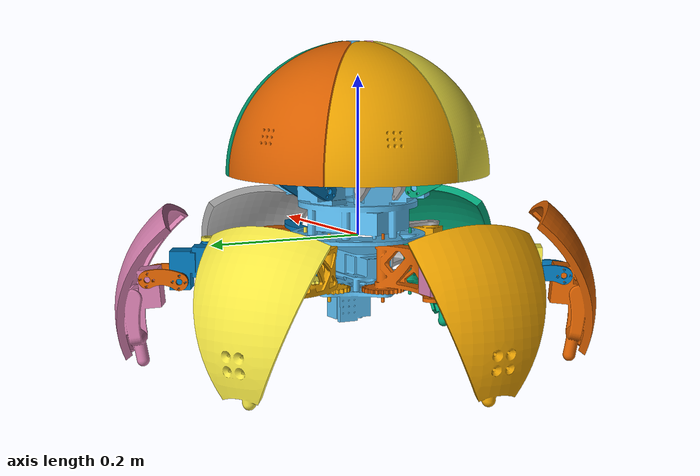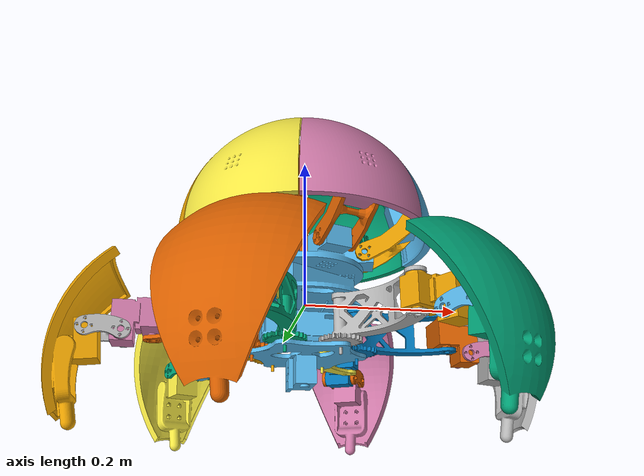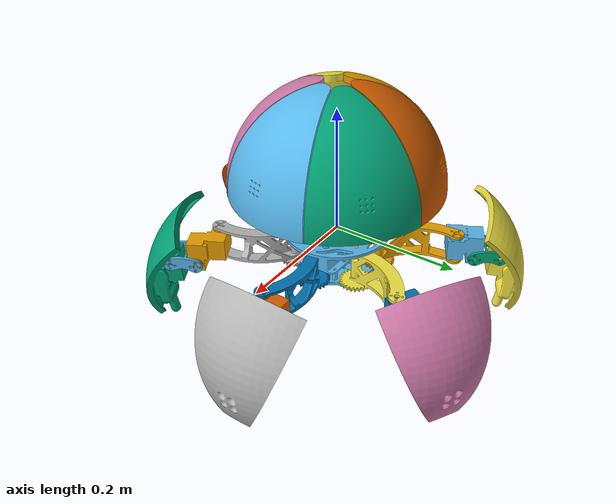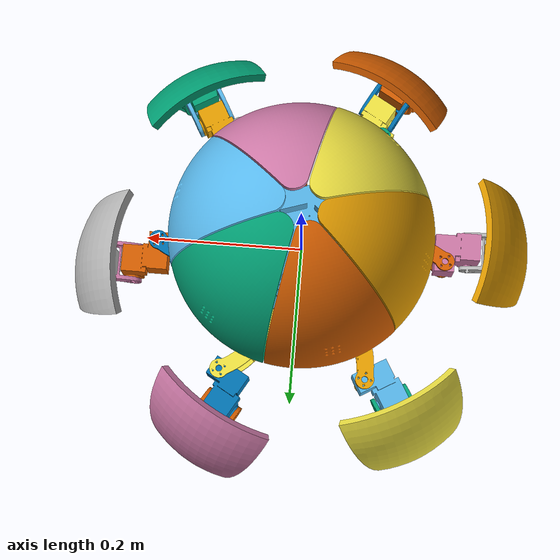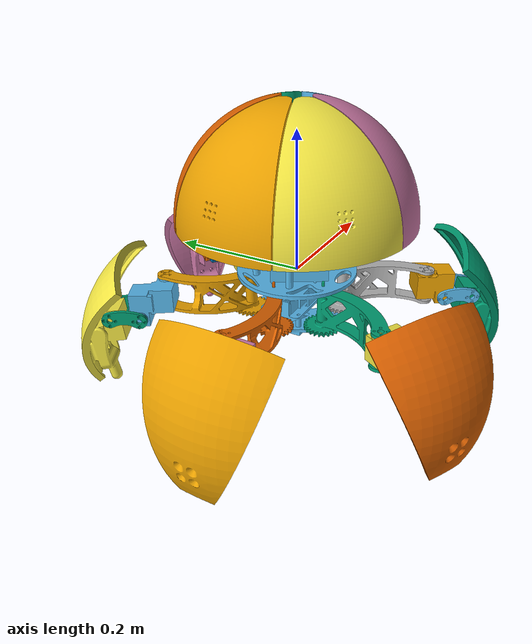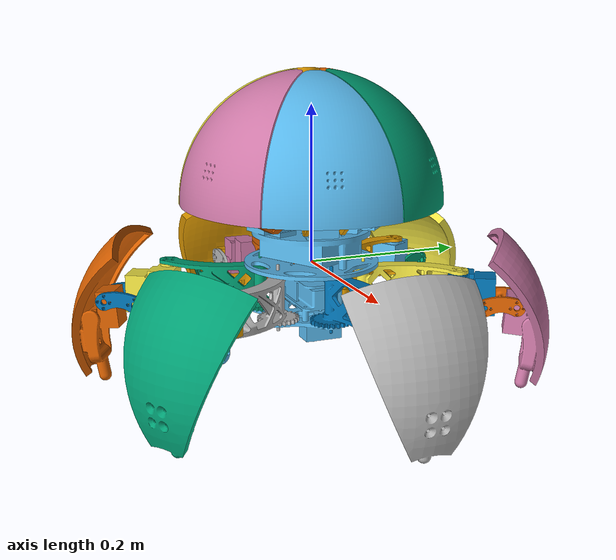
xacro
<?xml version="1.0"?>
<robot xmlns:xacro="http://www.ros.org/wiki/xacro" name ="shell_robot">

  <!-- legs index variables definitions -->
  <xacro:arg name="leg_num_B" default=""/>
  <xacro:arg name="leg_num_U" default=""/>

  <!-- xacro files including -->
  <xacro:include filename="$(find shellbot_pkg)/models/chassis.urdf.xacro" />
  <xacro:include filename="$(find shellbot_pkg)/models/shell_robot_bottom_leg.urdf.xacro"/>
  <xacro:include filename="$(find shellbot_pkg)/models/shell_robot_upper_leg.urdf.xacro"/>
  <xacro:include filename="$(find shellbot_pkg)/models/variables.urdf.xacro"/>

  <!-- bottom legs definitions - index: leg_B -->
  <xacro:bottom_leg leg_num_B="1"/>
  <xacro:bottom_leg leg_num_B="2"/>
  <xacro:bottom_leg leg_num_B="3"/>
  <xacro:bottom_leg leg_num_B="4"/>
  <xacro:bottom_leg leg_num_B="5"/>
  <xacro:bottom_leg leg_num_B="6"/>

  <!-- upper legs definitions - index: leg_U -->
  <xacro:upper_leg leg_num_U="1"/>
  <xacro:upper_leg leg_num_U="2"/>
  <xacro:upper_leg leg_num_U="3"/>
  <xacro:upper_leg leg_num_U="4"/>
  <xacro:upper_leg leg_num_U="5"/>
  <xacro:upper_leg leg_num_U="6"/>

  <!-- physics engine definition, included in variables.urdf.xacro -->
  <xacro:ode_solver/>

  <!-- Gazebo plugin for ROS Control -->
  <gazebo>
    <plugin name="gazebo_ros_control" filename="libgazebo_ros_control.so">
      <robotNamespace>/</robotNamespace>
      <legacyModeNS>true</legacyModeNS>
    </plugin>
  </gazebo>

</robot>

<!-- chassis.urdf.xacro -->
<robot xmlns:xacro="http://www.ros.org/wiki/xacro">

    <!-- variables inclusion -->
    <xacro:include filename="$(find shellbot_pkg)/models/variables.urdf.xacro" />

    <!-- map link -->
    <link name="map">
        <selfCollide>1</selfCollide> -->
    </link>

    <!-- chassis link -->
    <link name="base_chassis">
        <selfCollide>0</selfCollide>
        <inertial>
            <mass value="${base_chassis_m}"/>
            <origin rpy ="0 0 0" xyz="0 0 0"/>
            <xacro:base_link_inertia/>
        </inertial>
        <collision name="base_chassis">
            <xacro:visual_off_base_link/>
            <xacro:base_link_geometry/>
        </collision>
        <visual>
        	<xacro:visual_off_base_link/>
            <xacro:base_link_geometry/>
        </visual>
    </link>

    <!-- from map to robot -->
    <joint name="to_robot" type="fixed">
        <parent link="map"/>
        <child link="base_chassis"/>
        <origin rpy="0 0 0" xyz="0 0 0"/>
    </joint>

    <!-- ******************************************** GAZEBO ******************************************** -->
    <gazebo reference="map"></gazebo>
    <gazebo reference="base_chassis"></gazebo>

</robot>

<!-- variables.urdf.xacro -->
<robot xmlns:xacro="http://www.ros.org/wiki/xacro">

	<!-- bottom leg starting position -->
	<xacro:property name="L_O0_B" value="${L_O0_B_X} 0 ${L_O0_B_Z}" />
	<xacro:property name="R_O0_B" value="0 0 1.0472" />

	<!--  DH from q_1_1_1 to q_1_i_2  -->
	<xacro:property name="DH_q_1_1_2_pos" value="${LB_12} 0 0" />
	<xacro:property name="DH_q_1_1_2_rot" value="0 0 0" />

	<!--  DH from q_1_1_2 to q_1_i_3  -->
	<xacro:property name="init_q_B_1_i_3" value="${-3.5 * pi / 180}" />
	<xacro:property name="DH_q_1_1_3_pos" value="${LB_23_X} ${LB_23_Z} ${-LB_23_Z}" />
	<xacro:property name="DH_q_1_1_3_rot" value="-${pi/2} ${init_q_B_1_i_3} 0" />

	<!--  DH from q_1_1_3 to q_1_i_4  -->
	<xacro:property name="init_q_B_1_i_4" value="${88 * pi / 180}" />
	<xacro:property name="DH_q_1_1_4_pos" value="${LB_34} 0 0" />
	<xacro:property name="DH_q_1_1_4_rot" value="0 0 ${init_q_B_1_i_4}" />

    <!--  upper leg starting position -->
    <xacro:property name="init_q_U_2_i_1" value="-0.67" />
    <xacro:property name="init_q_U_2_i_2" value="1.16" />
    <xacro:property name="DH_q_2_1_1_pos" value="${U_distance_X} 0.002 0" />
    <xacro:property name="DH_q_2_1_1_rot" value="${pi/2} ${init_q_U_2_i_1} 0" />
    <xacro:property name="DH_q_2_1_2_pos" value="${L12_U} -0.002 0" />
    <xacro:property name="DH_q_2_1_2_rot" value="0 0 ${init_q_U_2_i_2}" />

	<!-- ******************************** VISUAL ELEMENTS OFFSET ******************************** -->
	<xacro:macro name="visual_off_base_link">
		<origin rpy="0 0 0" xyz="0 0 0"/>
	</xacro:macro>

	<xacro:macro name="visual_off_upper_chassis">
		<origin rpy="0 0 0" xyz="0 0 0"/>
	</xacro:macro>

	<xacro:macro name="visual_off_bottom_chassis">
		<origin rpy="0 0 0" xyz="0 0 0"/>
	</xacro:macro>

	<xacro:macro name="visual_off_chassis">
		<origin rpy="0 0 0" xyz="0 0 0"/>
	</xacro:macro>

	<xacro:macro name="visual_off_FF_link_B_i">
		<origin rpy="0 0 0" xyz="0 0 -0.032"/>
	</xacro:macro>

	<xacro:macro name="visual_off_leg_B_i_1">
		<origin rpy="0 0 0" xyz="0 0 0"/>
	</xacro:macro>
	<xacro:macro name="visual_off_leg_B_i_2">
		<origin rpy="0 0 0" xyz="0 0 0"/>
	</xacro:macro>
	<xacro:macro name="visual_off_leg_B_i_3">
		<origin rpy="0 0 0" xyz="0 0 0"/>
	</xacro:macro>
	<xacro:macro name="visual_off_leg_B_i_4">
		<origin rpy="0 0 0" xyz="0 0 0"/>
	</xacro:macro>
	<xacro:macro name="visual_off_leg_B_i_5">
		<origin rpy="0 0 0" xyz="0 0 0"/>
	</xacro:macro>
	<xacro:macro name="visual_off_FF_link_U_i">
		<origin rpy="0 0 0" xyz="0 0 0"/>
	</xacro:macro>
	<xacro:macro name="visual_off_leg_U_i_1">
		<origin rpy="0 0 0" xyz="0 0 0"/>
	</xacro:macro>
	<xacro:macro name="visual_off_leg_U_i_2">
		<origin rpy="0 0 0" xyz="0 0 0"/>
	</xacro:macro>

	<!-- ******************************** CONSTANTS ******************************** -->
	<!-- spawn location -->
	<xacro:property name="spawn_center" value="0 0 0" />

	<!-- rescale_to_meters -->
	<xacro:property name="scaling" value="0.001 0.001 0.001" />

	<!-- center gear radius -->
	<xacro:property name="CG_radius" value="0.040" />

	<!-- orbit gear radius -->
	<xacro:property name="OG_radius" value="0.015" />

	<!-- orbit gear radius -->
	<xacro:property name="gears_height" value="0.019" />

	<!-- distance between middle gear and orbit gear center -->
	<xacro:property name="L_O0_B_X" value="0.066" />

	<!-- distance between chassis center and orbit gear center -->
	<xacro:property name="L_O0_B_Z" value="-0.029" />

	<!-- distance between orbit gear center and successive joint (LB12) -->
	<xacro:property name="LB_12" value="0.120" />

	<!-- distance between joint q_1_1_2 and q_1_1_3 ORIGINAL:0.038 -->
	<xacro:property name="LB_23_X" value="0.0335" />

	<!-- interax q_1_1_2 and q_1_1_3 along z -->
	<xacro:property name="LB_23_Z" value="0.02425" />

	<!-- interax q_1_1_2 and q_1_1_3 along y -->
	<xacro:property name="LB_23_Y" value="0.02794" />

	<!-- distance between joint q_1_1_3 and q_1_1_4 ORIGINAL:0.066 -->
	<xacro:property name="LB_34" value="0.04" />

	<!-- interax q_1_1_2 and q_1_1_4 along z -->
	<xacro:property name="LB_34_Z" value="0.00" />

	<!-- distance between joint q_1_1_4 and ee leg ORIGINAL:0.01169 -->
	<xacro:property name="LB_45" value="0.112" />

	<!-- distance x center-first joint upper leg -->
	<xacro:property name="U_distance_X" value="0.07675" />

	<!-- distance Z center-first joint upper leg -->
	<xacro:property name="U_distance_Z" value="0.0635" />

	<!-- upper leg 12 lenght  ORIGINAL:0.085-->
	<xacro:property name="L12_U" value="0.065" />

	<!-- upper leg 23 lenght -->
	<xacro:property name="L23_U" value="0.085" />

	<!-- chassis height -->
	<xacro:property name="Hchassis" value="0.01" />

	<!-- chassis radius -->
	<xacro:property name="Rchassis" value="0.08" />

	<!-- chassis relative distance/2 -->
	<xacro:property name="DMchassis" value="${(Hchassis*2+Dchassis)/2}" />

	<!-- visual proprieties -->
	<xacro:property name="link_radius" value="0.005" />
	<xacro:property name="LB12_C_pos" value="${LB_12/2} 0 0" />
	<xacro:property name="LB_12_len" value="${LB_12}" />
	<xacro:property name="LB23_C_pos" value="${LB_23_X/2} 0 0" />
	<xacro:property name="LB_23_len" value="${LB_23_X}" />
	<xacro:property name="LB34_C_pos" value="${LB_34/2} 0 0" />
	<xacro:property name="LB_34_len" value="${LB_34}" />
	<xacro:property name="LB45_C_pos" value="${LB_45/2} 0 0" />
	<xacro:property name="LB_45_len" value="${LB_45}" />

	<!-- joint limits -->
	<xacro:property name="AX_12A_maxeffort" value="0.736" />
	<xacro:property name="AX_18A_maxeffort" value="0.882" />
	<xacro:property name="AX_12A_maxspeed" value="1.78465545" />
	<xacro:property name="AX_18A_maxspeed" value="1.78465545" />

	<!-- joint limits - BOTTOM LEGS -->
	<xacro:property name="q1_max_pos" value="0" />
	<xacro:property name="q1_min_pos" value="-${2.5}" />
	<xacro:property name="q2_max_pos" value="${pi}" />
	<xacro:property name="q2_min_pos" value="-${pi}" />
	<xacro:property name="q3_max_pos" value="${pi}" />
	<xacro:property name="q3_min_pos" value="-${pi/2}" />
	<xacro:property name="q4_max_pos" value="${pi}" />
	<xacro:property name="q4_min_pos" value="-${pi}" />

	<!-- joint limits - UPPER LEGS -->
	<xacro:property name="q_U_1_max_pos" value="${pi/2}" />
	<xacro:property name="q_U_1_min_pos" value="-${pi/2}" />
	<xacro:property name="q_U_2_max_pos" value="${pi/2}" />
	<xacro:property name="q_U_2_min_pos" value="-${pi/2}" />

	<!-- ******************************** PHYSICAL PROPERTIES ******************************** -->
	<xacro:property name="base_chassis_m" value="1.007" />

	<xacro:property name="LB_i_1_m" value="0.042" />
	<xacro:property name="LB_i_2_m" value="0.108" />
	<xacro:property name="LB_i_3_m" value="0.008" />
	<xacro:property name="LB_i_4_m" value="0.152" />	<!-- bottom shell mass -->

	<xacro:property name="LU_i_1_m" value="0.011" />
	<xacro:property name="LU_i_2_m" value="0.133" />  	<!-- upper shell mass -->

	<!-- ******************************** INERTIAS ******************************** -->
	<xacro:macro name="base_link_inertia">
			<inertia ixx="3444e-6" ixy="-37e-6" ixz="6e-6" iyy="3644e-6" iyz="70e-6" izz="2502e-6" />
	</xacro:macro>

	<xacro:macro name="leg_u_i_0_inertia">
			<inertia ixx="1e-6" ixy="0" ixz="0" iyy="1e-6" iyz="0" izz="1e-6" />
	</xacro:macro>

	<xacro:macro name="leg_U_i_1_inertia">
			<inertia ixx="13e-6" ixy="9e-6" ixz="2e-6" iyy="19e-6" iyz="-2e-6" izz="30e-6" />
	</xacro:macro>

	<xacro:macro name="leg_U_i_2_inertia">
			<inertia ixx="180e-6" ixy="-42e-6" ixz="-7e-6" iyy="608e-6" iyz="1e-6" izz="528e-6" />
	</xacro:macro>

	<xacro:macro name="leg_B_i_1_inertia">
		<inertia ixx="27e-6" ixy="-16e-6" ixz="0" iyy="125e-6" iyz="0" izz="110e-6" />
	</xacro:macro>

	<xacro:macro name="leg_B_i_2_inertia">
			<inertia ixx="81e-6" ixy="-44e-6" ixz="15e-6" iyy="85e-6" iyz="15e-6" izz="121e-6" />
	</xacro:macro>

	<xacro:macro name="leg_B_i_3_inertia">
			<inertia ixx="4e-6" ixy="0.4e-6" ixz="0" iyy="8e-6" iyz="0" izz="5e-6" />
	</xacro:macro>

	<xacro:macro name="leg_B_i_4_inertia">
			<inertia ixx="186e-6" ixy="54e-6" ixz="-1e-6" iyy="474e-6" iyz="1e-6" izz="391e-6" />
	</xacro:macro>

	<!-- surface_def -->
	<xacro:macro name="default_surface">
		<surface>
			<contact>
				<friction>
    				<ode>
      					<mu>1000</mu>
      					<mu2>1500</mu2>
    				</ode>
  				</friction>
  				<bounce>
    				<restitution_coefficient>0.001</restitution_coefficient>
    				<threshold>0.01</threshold>
  				</bounce>
				<poissons_ratio>0.347</poissons_ratio>
				<elastic_modulus>8.8e+07</elastic_modulus>
				<ode>
					<soft_cfm>0.004</soft_cfm>
					<soft_erp>0.05</soft_erp>
					<kp>10</kp>
					<kd>2.5</kd>
					<max_vel>10.0</max_vel>
					<min_depth>0.001</min_depth>
				</ode>
			</contact>
		</surface>
	</xacro:macro>

	<!-- ode_solver -->
	<xacro:macro name="ode_solver">
		<physics name="ode_custom" type="oder" default="true">
			<real_time_update_rate>1000</real_time_update_rate>
			<max_step_size>0.008</max_step_size>
			<min_step_size>0.0001</min_step_size>
			<max_contacts>50</max_contacts>
			<use_dynamic_moi_rescaling>1</use_dynamic_moi_rescaling>
			<ode>
				<solver>
					<type>quick</type>
					<precon_iters>10</precon_iters>
					<iters>50</iters>
					<sor>1.2</sor>
				</solver>
				<constraints>
					<cfm>0.05</cfm>
					<erp>0.1</erp>
				</constraints>
			</ode>
		</physics>
	</xacro:macro>

	<!-- *********************************************** MESHES FILES UPLOAD *********************************************************** -->
	<!-- stl file location -->
	<xacro:property name="stl_path" value="package://shellbot_pkg/meshes/" />

    <!-- chassis -->
	<xacro:property name="base_chassis" value="${stl_path}base_chassis.stl" />

    <!-- bottom legs -->
    <xacro:property name="leg_B_01" value="${stl_path}leg_B_01.stl" />
    <xacro:property name="central_gear" value="${stl_path}central_gear.stl" />
    <xacro:property name="leg_B_12" value="${stl_path}leg_B_12.stl" />
    <xacro:property name="leg_B_23" value="${stl_path}leg_B_23.stl" />
    <xacro:property name="bottom_shell" value="${stl_path}bottom_shell.stl" />

    <!-- upper_legs -->
    <xacro:property name="leg_U_01" value="${stl_path}leg_U_01.stl" />
    <xacro:property name="upper_shell" value="${stl_path}upper_shell.stl" />

    <!-- ***************************************** MESHES FILES DEFINITIONS ************************************************************ -->
	<!-- chassis -->
	<xacro:macro name="base_link_geometry">
		<geometry>
			<mesh filename="${base_chassis}" scale="${scaling}" />
		</geometry>
	</xacro:macro>

	<!-- leg gear and first link -->
    <xacro:macro name="leg_B_01_geometry">
        <geometry>
            <mesh filename="${leg_B_01}" scale="${scaling}" />
        </geometry>
    </xacro:macro>

	<!-- first and second motor block -->
    <xacro:macro name="leg_B_12_geometry">
        <geometry>
			<mesh filename="${leg_B_12}" scale="${scaling}" />
		</geometry>
    </xacro:macro>

	<!-- second link -->
    <xacro:macro name="leg_B_23_geometry">
        <geometry>
			<mesh filename="${leg_B_23}" scale="${scaling}" />
		</geometry>
    </xacro:macro>

    <xacro:macro name="bottom_shell_geometry">
        <geometry>
			<mesh filename="${bottom_shell}" scale="${scaling}" />
		</geometry>
    </xacro:macro>

    <xacro:macro name="leg_U_01_geometry">
        <geometry>
			<mesh filename="${leg_U_01}" scale="${scaling}" />
		</geometry>
    </xacro:macro>

    <xacro:macro name="upper_shell_geometry">
		<origin rpy="0 0 0" xyz="0 0 0" />
        <geometry>
			<mesh filename="${upper_shell}" scale="${scaling}" />
		</geometry>
    </xacro:macro>

</robot>

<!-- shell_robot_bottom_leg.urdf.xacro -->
<robot xmlns:xacro="http://www.ros.org/wiki/xacro">

	<!-- variables import -->
	<xacro:include filename="$(find shellbot_pkg)/models/variables.urdf.xacro" />

	<!-- bottom leg description -->
	<xacro:macro name="bottom_leg" params="leg_num_B">

		<!-- fictitious link (rotation and translation in Z) -->
		<link name="leg_B_${leg_num_B}_0Z">
			<selfCollide>0</selfCollide>
			<inertial>
				<mass value="1e-3" />
				<inertia ixx="1e-6" ixy="0" ixz="0" iyy="1e-6" iyz="0" izz="1e-6" />
			</inertial>
		</link>
		<!-- leg_B_[leg_number]_1 link - leg gear + first link -->
		<link name="leg_B_${leg_num_B}_1">
			<selfCollide>0</selfCollide>
			<inertial>
				<mass value="${LB_i_1_m}" />
				<xacro:visual_off_leg_B_i_1/>
				<xacro:leg_B_i_1_inertia/>
			</inertial>
			<collision name="leg_B_${leg_num_B}_1">
				<xacro:visual_off_leg_B_i_1/>
				<xacro:leg_B_01_geometry/>
				<default_surface/>
			</collision>
			<visual>
				<xacro:visual_off_leg_B_i_1/>
				<xacro:leg_B_01_geometry/>
			</visual>
		</link>
		<!-- leg_B_[leg_number]_2 link - motors pair -->
		<link name="leg_B_${leg_num_B}_2">
			<selfCollide>1</selfCollide>
			<inertial>
				<mass value="${LB_i_2_m}" />
				<xacro:visual_off_leg_B_i_2/>
				<xacro:leg_B_i_2_inertia/>
			</inertial>
			<collision name="leg_B_${leg_num_B}_2">
				<xacro:visual_off_leg_B_i_2/>
				<xacro:leg_B_12_geometry/>
				<default_surface/>
			</collision>
			<visual>
				<xacro:visual_off_leg_B_i_2/>
				<xacro:leg_B_12_geometry/>
			</visual>
		</link>
		<!-- leg_B_[leg_number]_3 link - link after motors pair -->
		<link name="leg_B_${leg_num_B}_3">
			<selfCollide>1</selfCollide>
			<inertial>
				<mass value="${LB_i_3_m}" />
				<xacro:visual_off_leg_B_i_3/>
				<xacro:leg_B_i_3_inertia/>
			</inertial>
			<collision name="leg_B_${leg_num_B}_3">
				<xacro:visual_off_leg_B_i_3/>
				<xacro:leg_B_23_geometry/>
			</collision>
			<default_surface/>
			<visual>
				<xacro:visual_off_leg_B_i_3/>
				<xacro:leg_B_23_geometry/>
			</visual>
		</link>
		<!-- leg_B_[leg_number]_4 link - leg tip + shell -->
		<link name="leg_B_${leg_num_B}_4">
			<selfCollide>1</selfCollide>
			<inertial>
				<mass value="${LB_i_4_m}" />
				<xacro:visual_off_leg_B_i_4/>
				<xacro:leg_B_i_4_inertia/>
			</inertial>
			<collision name="leg_B_${leg_num_B}_4">
				<xacro:visual_off_leg_B_i_4/>
				<xacro:bottom_shell_geometry/>
				<default_surface/>
			</collision>
			<visual>
				<xacro:visual_off_leg_B_i_4/>
				<xacro:bottom_shell_geometry/>
			</visual>
		</link>

		<!-- q_b_i_0_offset - link from leg gear to first link -->
		<joint name="q_b_${leg_num_B}_0_offset" type="fixed">
			<parent link="base_chassis" />
			<child link="leg_B_${leg_num_B}_0Z" />
			<origin rpy="0 0 ${1.0472 * leg_num_B}" xyz="0 0 ${L_O0_B_Z}" />
			<axis xyz="0 0 1" />
		</joint>
		<!-- q_b_[leg_number]_1 - leg gear (central gear actuation / 6) -->
		<joint name="q_b_${leg_num_B}_1" type="revolute">
			<parent link="leg_B_${leg_num_B}_0Z" />
			<child link="leg_B_${leg_num_B}_1" />
			<origin rpy="0 0 0" xyz="${L_O0_B_X} 0 0" />
			<limit effort="${AX_12A_maxeffort}" velocity="${AX_12A_maxspeed}" upper="${q1_max_pos}" lower="${q1_min_pos}" />
			<dynamics damping="6e-10" friction="0.13"/>
			<axis xyz="0 0 1" />
		</joint>
		<!-- q_b_[leg_number]_2 - first motor of motors pair -->
		<joint name="q_b_${leg_num_B}_2" type="revolute">
			<parent link="leg_B_${leg_num_B}_1" />
			<child link="leg_B_${leg_num_B}_2" />
			<origin rpy="${DH_q_1_1_2_rot}" xyz="${DH_q_1_1_2_pos}" />
			<limit effort="${AX_12A_maxeffort}" velocity="${AX_12A_maxspeed}" upper="${q2_max_pos}" lower="${q2_min_pos}" />
			<dynamics damping="6e-10" friction="0.13"/>
			<axis xyz="0 0 1" />
		</joint>
		<!-- q_b_[leg_number]_3 - second motor of motors pair -->
		<joint name="q_b_${leg_num_B}_3" type="revolute">
			<parent link="leg_B_${leg_num_B}_2" />
			<child link="leg_B_${leg_num_B}_3" />
			<origin rpy="${DH_q_1_1_3_rot}" xyz="${DH_q_1_1_3_pos}" />
			<limit effort="${AX_18A_maxeffort}" velocity="${AX_18A_maxspeed}" upper="${q3_max_pos}" lower="${q3_min_pos}" />
			<dynamics damping="6e-10" friction="0.13"/>
			<axis xyz="0 0 1" />
		</joint>
		<!-- q_b_[leg_number]_4 - third motor of bottom leg -->
		<joint name="q_b_${leg_num_B}_4" type="revolute">
			<parent link="leg_B_${leg_num_B}_3" />
			<child link="leg_B_${leg_num_B}_4" />
			<origin rpy="${DH_q_1_1_4_rot}" xyz="${DH_q_1_1_4_pos}" />
			<limit effort="${AX_12A_maxeffort}" velocity="${AX_12A_maxspeed}" upper="${q4_max_pos}" lower="${q4_min_pos}" />
			<dynamics damping="6e-10" friction="0.13"/>
			<axis xyz="0 0 1" />
		</joint>

		<!-- *********************************************** GAZEBO ************************************************ -->

		<gazebo reference="leg_b_${leg_num_B}_0"></gazebo>
		<gazebo reference="leg_b_${leg_num_B}_1"></gazebo>
		<gazebo reference="leg_b_${leg_num_B}_2"></gazebo>
		<gazebo reference="leg_B_${leg_num_B}_2"></gazebo>
		<gazebo reference="leg_B_${leg_num_B}_3"></gazebo>

		<gazebo reference="leg_B_${leg_num_B}_4">
      		<!-- Columb friction coefficients http://www.ode.org/ode-latest-userguide.html#sec_7_3_7 -->
      		<mu1 value="0.4"/>
      		<mu2 value="0.4"/>
      		<!-- contact stiffness -->
      		<kp value="100000.0"/>
      		<!-- contact damping -->
      		<kd value="10.0"/>
		</gazebo>

		<!-- ****************************************** ATTUAZIONE ****************************************** -->
		<transmission name="tran_b_${leg_num_B}_1">
			<type>transmission_interface/SimpleTransmission</type>
			<actuator name="motor_b_${leg_num_B}_1">
				<mechanicalReduction>1</mechanicalReduction>
			</actuator>
			<joint name="q_b_${leg_num_B}_1">
				<hardwareInterface>hardware_interface/EffortJointInterface</hardwareInterface>
			</joint>
		</transmission>

		<transmission name="tran_b_${leg_num_B}_2">
			<type>transmission_interface/SimpleTransmission</type>
			<actuator name="motor_b_${leg_num_B}_2">
				<mechanicalReduction>1</mechanicalReduction>
			</actuator>
			<joint name="q_b_${leg_num_B}_2">
				<hardwareInterface>hardware_interface/EffortJointInterface</hardwareInterface>
			</joint>
		</transmission>

		<transmission name="tran_b_${leg_num_B}_3">
			<type>transmission_interface/SimpleTransmission</type>
			<actuator name="motor_b_${leg_num_B}_3">
				<mechanicalReduction>1</mechanicalReduction>
			</actuator>
			<joint name="q_b_${leg_num_B}_3">
				<hardwareInterface>hardware_interface/EffortJointInterface</hardwareInterface>
			</joint>
		</transmission>

		<transmission name="tran_b_${leg_num_B}_4">
			<type>transmission_interface/SimpleTransmission</type>
			<actuator name="motor_b_${leg_num_B}_4">
				<mechanicalReduction>1</mechanicalReduction>
			</actuator>
			<joint name="q_b_${leg_num_B}_4">
				<hardwareInterface>hardware_interface/EffortJointInterface</hardwareInterface>
			</joint>
		</transmission>

	</xacro:macro>
</robot>

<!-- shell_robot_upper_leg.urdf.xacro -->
<robot xmlns:xacro="http://www.ros.org/wiki/xacro">

    <!-- variables including -->
    <xacro:include filename="$(find shellbot_pkg)/models/variables.urdf.xacro" />

    <!-- upper leg description -->
    <xacro:macro name="upper_leg" params="leg_num_U">

       <!-- circular coordinates from central gear to leg start -->
        <xacro:property name="DH_U_FF_pos" value="0 0 ${U_distance_Z}" />
        <xacro:property name="DH_U_FF_rot" value="0 0 ${(1.04719 * leg_num_U) - (12 * pi / 180)}" />

        <!-- ******************************************** LINKS AND JOINTS ********************************************* -->
        <!-- q_b_i_0_offset -->
        <joint name="q_u_${leg_num_U}_0_offset" type="fixed">
            <parent link="base_chassis"/>
            <child link="L_U_${leg_num_U}_0_offset"/>
            <origin rpy="${DH_U_FF_rot}" xyz="${DH_U_FF_pos}"/>
            <dynamics damping="6e-10" friction="0.13"/>
        </joint>

        <!-- fixed link - from center to leg start -->
        <link name="L_U_${leg_num_U}_0_offset">
            <selfCollide>1</selfCollide>
            <xacro:visual_off_FF_link_U_i/>
            <inertial>
                <mass value="1e-3"/>
                <xacro:visual_off_FF_link_U_i/>
                <xacro:leg_u_i_0_inertia/>
            </inertial>
        </link>

        <!-- q_u_i_1 - upper leg first motor -->
        <joint name="q_u_${leg_num_U}_1" type="revolute">
            <parent link="L_U_${leg_num_U}_0_offset"/>
            <child link="L_U_${leg_num_U}_1"/>
            <origin rpy="${DH_q_2_1_1_rot}" xyz="${DH_q_2_1_1_pos}"/>
            <limit effort="${AX_12A_maxeffort}" velocity="${AX_12A_maxspeed}" upper="${q_U_1_max_pos}" lower ="${q_U_1_min_pos}" />
            <dynamics damping="6e-10" friction="0.13"/>
            <axis xyz="0 0 1"/>
        </joint>

        <!-- leg_U_i_1 link - upper leg first link -->
        <link name="L_U_${leg_num_U}_1">
            <selfCollide>1</selfCollide>
            <inertial>
                <xacro:visual_off_leg_U_i_1/>
                <mass value="${LU_i_1_m}"/>
                <xacro:leg_U_i_1_inertia/>
            </inertial>
            <collision name="L_U_${leg_num_U}_1">
                <xacro:visual_off_leg_U_i_1/>
                <xacro:leg_U_01_geometry/>
            </collision>
            <visual>
                <xacro:visual_off_leg_U_i_1/>
                <xacro:leg_U_01_geometry/>
            </visual>
        </link>

        <!-- q_u_i_2 - upper leg second link -->
        <joint name="q_u_${leg_num_U}_2" type="revolute">
            <parent link="L_U_${leg_num_U}_1"/>
            <child link="L_U_${leg_num_U}_2"/>
            <origin rpy="${DH_q_2_1_2_rot}" xyz="${DH_q_2_1_2_pos}"/>
            <limit effort="${AX_12A_maxeffort}" velocity="${AX_12A_maxspeed}" upper="${q_U_2_max_pos}" lower ="${q_U_2_min_pos}" />
            <dynamics damping="6e-10" friction="0.13"/>
            <axis xyz="0 0 1"/>
        </joint>

        <!-- leg_U_i_1 link - upper shell -->
        <link name="L_U_${leg_num_U}_2">
            <selfCollide>1</selfCollide>
            <inertial>
                <xacro:visual_off_leg_U_i_2/>
                <mass value="${LU_i_2_m}"/>
                <xacro:leg_U_i_2_inertia/>
            </inertial>
            <collision name="L_U_${leg_num_U}_2">
                <xacro:visual_off_leg_U_i_2/>
                <xacro:upper_shell_geometry/>
            </collision>
            <visual>
                <xacro:visual_off_leg_U_i_2/>
                <xacro:upper_shell_geometry/>
            </visual>
        </link>

        <!-- ******************************************** GAZEBO ******************************************** -->
        <gazebo reference="FF_link_U_${leg_num_U}">
            <selfCollide>1</selfCollide>
        </gazebo>

        <gazebo reference="leg_u_${leg_num_U}_1">
            <selfCollide>1</selfCollide>
        </gazebo>

        <gazebo reference="leg_u_${leg_num_U}_2">
            <selfCollide>0</selfCollide>
        </gazebo>

        <!-- ****************************************** ACTUATION ****************************************** -->
        <transmission name="tran_u_${leg_num_U}_1">
            <type>transmission_interface/SimpleTransmission</type>
            <joint name="q_u_${leg_num_U}_1">
                <hardwareInterface>hardware_interface/EffortJointInterface</hardwareInterface>
            </joint>
            <actuator name="motor_u_${leg_num_U}_1">
                <mechanicalReduction>1</mechanicalReduction>
            </actuator>
        </transmission>

        <transmission name="tran_u_${leg_num_U}_2">
            <type>transmission_interface/SimpleTransmission</type>
            <joint name="q_u_${leg_num_U}_2">
                <hardwareInterface>hardware_interface/EffortJointInterface</hardwareInterface>
            </joint>
            <actuator name="motor_u_${leg_num_U}_2">
                <mechanicalReduction>1</mechanicalReduction>
            </actuator>
        </transmission>

    </xacro:macro>
</robot>
